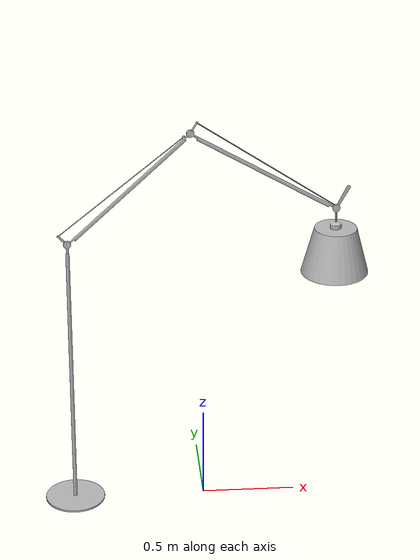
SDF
<?xml version='1.0'?>
<sdf version='1.4'>
  <model name='520'>
    <pose>0 0 0 0 0 0</pose>
    <static>true</static>
    <link name='link'>
      <collision name='collision'>
        <pose>0 0 0 0 0 0</pose>
        <geometry>
          <box>
            <size>1.7362 0.35315 2</size>
          </box>
        </geometry>
      </collision>
      <visual name='visual'>
        <pose>0 0 0 0 0 0</pose>
        <geometry>
          <mesh><uri>model://520/520.dae</uri></mesh>
        </geometry>
      </visual>
    </link>
  </model>
</sdf>
